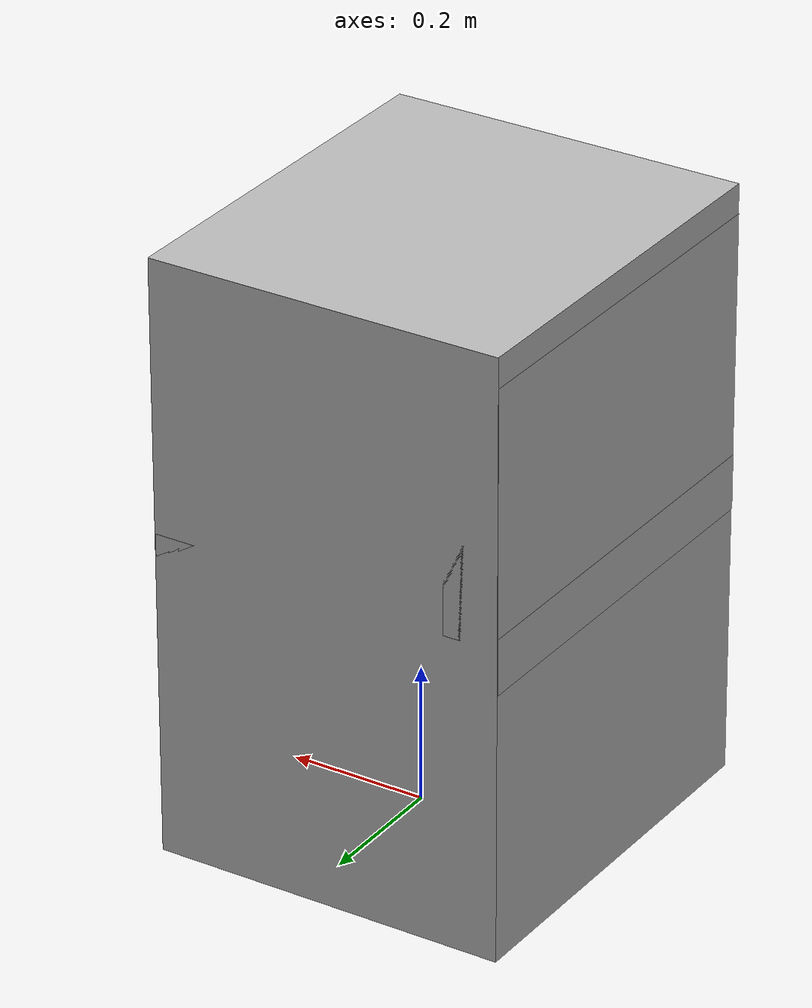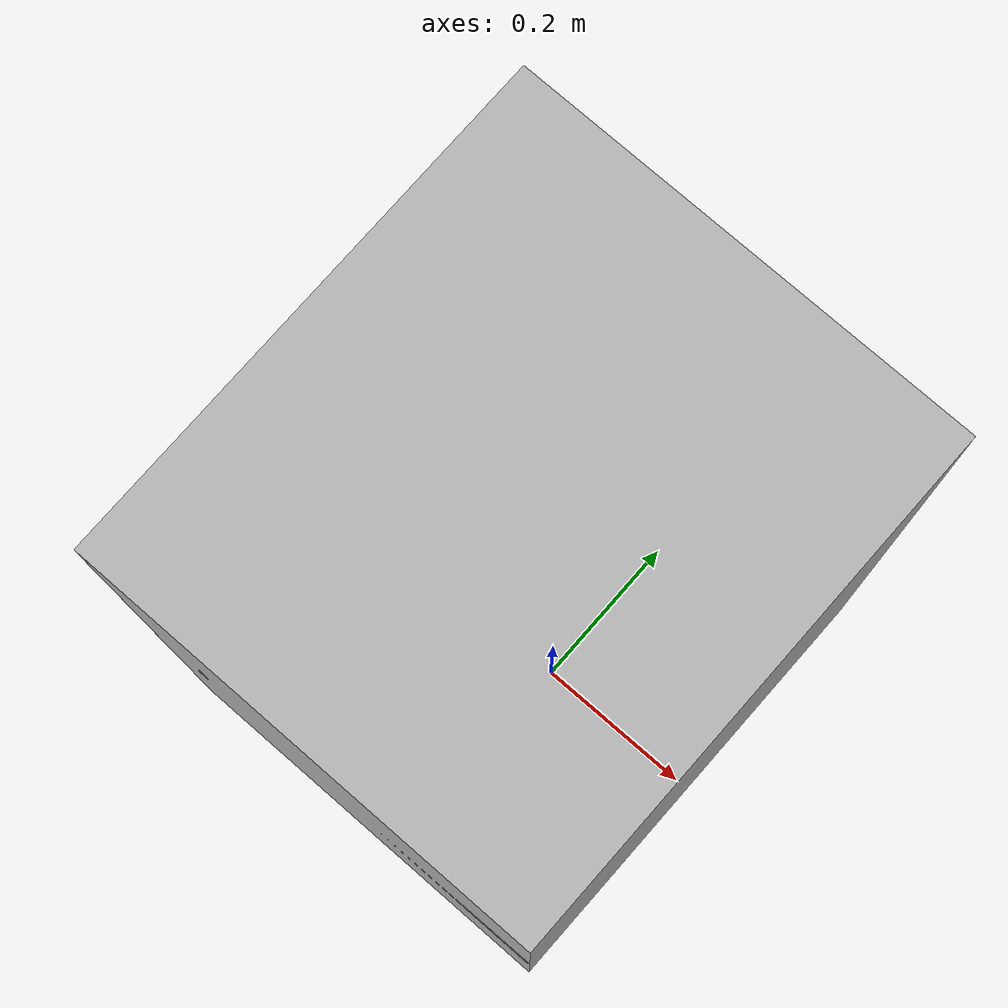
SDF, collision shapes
<?xml version="1.0"?>
<sdf version="1.6">
    <model name="Chair">
        <link name="body">
            <pose>0 0 0 0 0 1.5708</pose>
            <visual name="visual">
                <geometry>
                    <mesh>
                        <uri>meshes/Chair.obj</uri>
                        <scale>0.00817 0.00817 0.00817</scale>
                    </mesh>
                </geometry>
            </visual>
            <collision name="seat">
                <pose>0 0.041 0.43 0 0 0</pose>
                <geometry>
                    <box><size>0.579 0.513 0.08</size></box>
                </geometry>
            </collision>
            <collision name="backrest">
                <pose>0 0.257 0.635 0 0 0</pose>
                <geometry><box><size>0.579 0.08 0.365</size></box></geometry>
            </collision>
            <collision name="front_left_leg">
                <pose>0.24 -0.16 0.195 0 0 0</pose>
                <geometry><box><size>0.05 0.05 0.39</size></box></geometry>
            </collision>
            <collision name="front_right_leg">
                <pose>-0.24 -0.16 0.195 0 0 0</pose>
                <geometry><box><size>0.05 0.05 0.39</size></box></geometry>
            </collision>
            <collision name="back_left_leg">
                <pose>0.24 0.24 0.195 0 0 0</pose>
                <geometry><box><size>0.05 0.05 0.39</size></box></geometry>
            </collision>
            <collision name="back_right_leg">
                <pose>-0.24 0.24 0.195 0 0 0</pose>
                <geometry><box><size>0.05 0.05 0.39</size></box></geometry>
            </collision>
            <!-- Keep the small robot from passing between the legs. -->
            <collision name="navigation_footprint">
                <pose>0 0.04 0.43 0 0 0</pose>
                <geometry><box><size>0.579 0.513 0.86</size></box></geometry>
            </collision>
        </link>
    </model>
</sdf>
